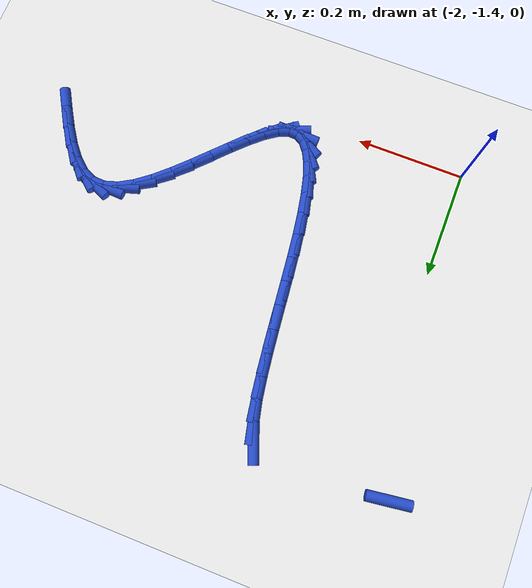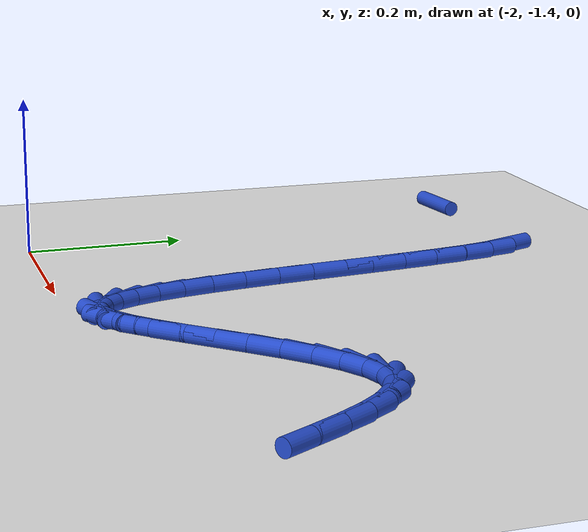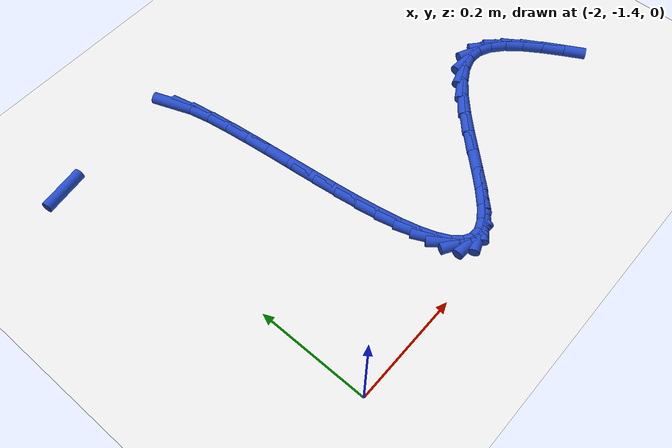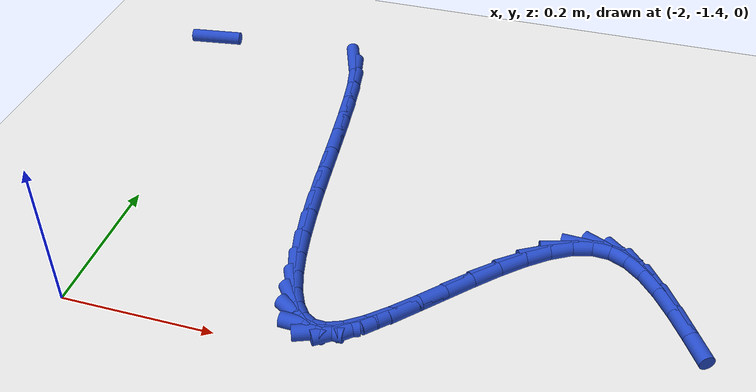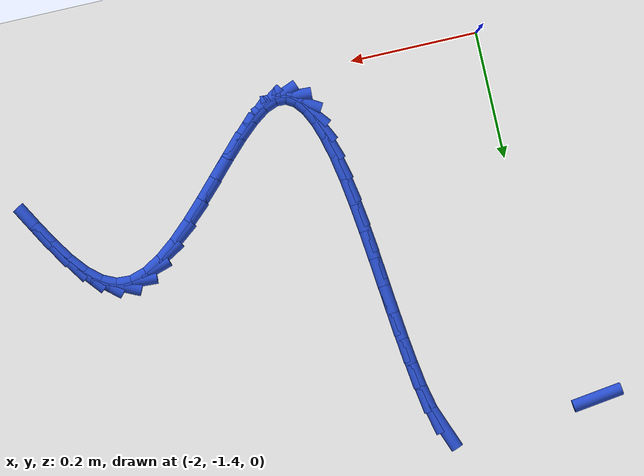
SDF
<sdf version="1.6">
 <world name="default">
  <model name="ground_plane">
   <static>1</static>
   <link name="link">
    <collision name="collision">
     <geometry><plane><normal>0 0 1</normal><size>100 100</size></plane></geometry>
     <surface><friction><ode><mu>100</mu><mu2>50</mu2></ode></friction></surface>
    </collision>
    <visual name="visual">
     <cast_shadows>0</cast_shadows>
     <geometry><plane><normal>0 0 1</normal><size>100 100</size></plane></geometry>
     <material>
      <script><uri>file://media/materials/scripts/gazebo.material</uri><name>Gazebo/WhiteGlow</name></script>
     </material>
    </visual>
   </link>
  </model>
  <model name="line">
   <link name="link_171">
    <pose>-2.0574273386530595 -0.8045697111637675 0.01 0 1.57 0.13420573447952366</pose>
    <collision name="collision">
     <geometry><cylinder><radius>0.01</radius><length>0.08</length></cylinder></geometry>
    </collision>
    <visual name="visual">
     <material>
      <script><name>Gazebo/Blue</name><uri>file://media/materials/scripts/gazebo.material</uri></script>
     </material>
     <geometry><cylinder><radius>0.01</radius><length>0.08</length></cylinder></geometry>
    </visual>
   </link>
   <link name="link_179">
    <pose>-1.8132017761412964 -0.8135681658975625 0.01 0 1.57 -1.205981990871385</pose>
    <collision name="collision">
     <geometry><cylinder><radius>0.01</radius><length>0.08</length></cylinder></geometry>
    </collision>
    <visual name="visual">
     <material>
      <script><name>Gazebo/Blue</name><uri>file://media/materials/scripts/gazebo.material</uri></script>
     </material>
     <geometry><cylinder><radius>0.01</radius><length>0.08</length></cylinder></geometry>
    </visual>
   </link>
   <link name="link_180">
    <pose>-1.8014931788398845 -0.8442262235104316 0.01 0 1.57 -1.3487975490068833</pose>
    <collision name="collision">
     <geometry><cylinder><radius>0.01</radius><length>0.08</length></cylinder></geometry>
    </collision>
    <visual name="visual">
     <material>
      <script><name>Gazebo/Blue</name><uri>file://media/materials/scripts/gazebo.material</uri></script>
     </material>
     <geometry><cylinder><radius>0.01</radius><length>0.08</length></cylinder></geometry>
    </visual>
   </link>
   <link name="link_181">
    <pose>-1.7932545634364587 -0.8807256413302305 0.01 0 1.57 -1.4158591493584807</pose>
    <collision name="collision">
     <geometry><cylinder><radius>0.01</radius><length>0.08</length></cylinder></geometry>
    </collision>
    <visual name="visual">
     <material>
      <script><name>Gazebo/Blue</name><uri>file://media/materials/scripts/gazebo.material</uri></script>
     </material>
     <geometry><cylinder><radius>0.01</radius><length>0.08</length></cylinder></geometry>
    </visual>
   </link>
   <link name="link_182">
    <pose>-1.7869482044718823 -0.9211021063606428 0.01 0 1.57 -1.4433334920001333</pose>
    <collision name="collision">
     <geometry><cylinder><radius>0.01</radius><length>0.08</length></cylinder></geometry>
    </collision>
    <visual name="visual">
     <material>
      <script><name>Gazebo/Blue</name><uri>file://media/materials/scripts/gazebo.material</uri></script>
     </material>
     <geometry><cylinder><radius>0.01</radius><length>0.08</length></cylinder></geometry>
    </visual>
   </link>
   <link name="link_183">
    <pose>-1.7814771741109001 -0.9637919568050595 0.01 0 1.57 -1.4590991842386198</pose>
    <collision name="collision">
     <geometry><cylinder><radius>0.01</radius><length>0.08</length></cylinder></geometry>
    </collision>
    <visual name="visual">
     <material>
      <script><name>Gazebo/Blue</name><uri>file://media/materials/scripts/gazebo.material</uri></script>
     </material>
     <geometry><cylinder><radius>0.01</radius><length>0.08</length></cylinder></geometry>
    </visual>
   </link>
   <link name="link_184">
    <pose>-1.776525228498479 -1.0079411126711226 0.01 0 1.57 -1.4670123826973323</pose>
    <collision name="collision">
     <geometry><cylinder><radius>0.01</radius><length>0.08</length></cylinder></geometry>
    </collision>
    <visual name="visual">
     <material>
      <script><name>Gazebo/Blue</name><uri>file://media/materials/scripts/gazebo.material</uri></script>
     </material>
     <geometry><cylinder><radius>0.01</radius><length>0.08</length></cylinder></geometry>
    </visual>
   </link>
   <link name="link_185">
    <pose>-1.771856120224629 -1.0527682045936237 0.01 0 1.57 -1.4678046930971198</pose>
    <collision name="collision">
     <geometry><cylinder><radius>0.01</radius><length>0.08</length></cylinder></geometry>
    </collision>
    <visual name="visual">
     <material>
      <script><name>Gazebo/Blue</name><uri>file://media/materials/scripts/gazebo.material</uri></script>
     </material>
     <geometry><cylinder><radius>0.01</radius><length>0.08</length></cylinder></geometry>
    </visual>
   </link>
   <link name="link_186">
    <pose>-1.7672336018793606 -1.0974918632073556 0.01 0 1.57 -1.4614644028445012</pose>
    <collision name="collision">
     <geometry><cylinder><radius>0.01</radius><length>0.08</length></cylinder></geometry>
    </collision>
    <visual name="visual">
     <material>
      <script><name>Gazebo/Blue</name><uri>file://media/materials/scripts/gazebo.material</uri></script>
     </material>
     <geometry><cylinder><radius>0.01</radius><length>0.08</length></cylinder></geometry>
    </visual>
   </link>
   <link name="link_187">
    <pose>-1.7624214260526838 -1.1413307191471087 0.01 0 1.57 -1.4472236521705786</pose>
    <collision name="collision">
     <geometry><cylinder><radius>0.01</radius><length>0.08</length></cylinder></geometry>
    </collision>
    <visual name="visual">
     <material>
      <script><name>Gazebo/Blue</name><uri>file://media/materials/scripts/gazebo.material</uri></script>
     </material>
     <geometry><cylinder><radius>0.01</radius><length>0.08</length></cylinder></geometry>
    </visual>
   </link>
   <link name="link_188">
    <pose>-1.757183345334609 -1.1835034030476763 0.01 0 1.57 -1.4233478482479953</pose>
    <collision name="collision">
     <geometry><cylinder><radius>0.01</radius><length>0.08</length></cylinder></geometry>
    </collision>
    <visual name="visual">
     <material>
      <script><name>Gazebo/Blue</name><uri>file://media/materials/scripts/gazebo.material</uri></script>
     </material>
     <geometry><cylinder><radius>0.01</radius><length>0.08</length></cylinder></geometry>
    </visual>
   </link>
   <link name="link_189">
    <pose>-1.7512831123151469 -1.223228545543849 0.01 0 1.57 -1.3866241658012075</pose>
    <collision name="collision">
     <geometry><cylinder><radius>0.01</radius><length>0.08</length></cylinder></geometry>
    </collision>
    <visual name="visual">
     <material>
      <script><name>Gazebo/Blue</name><uri>file://media/materials/scripts/gazebo.material</uri></script>
     </material>
     <geometry><cylinder><radius>0.01</radius><length>0.08</length></cylinder></geometry>
    </visual>
   </link>
   <link name="link_190">
    <pose>-1.7444844795843077 -1.2597247772704214 0.01 0 1.57 -1.3312777783412117</pose>
    <collision name="collision">
     <geometry><cylinder><radius>0.01</radius><length>0.08</length></cylinder></geometry>
    </collision>
    <visual name="visual">
     <material>
      <script><name>Gazebo/Blue</name><uri>file://media/materials/scripts/gazebo.material</uri></script>
     </material>
     <geometry><cylinder><radius>0.01</radius><length>0.08</length></cylinder></geometry>
    </visual>
   </link>
   <link name="link_191">
    <pose>-1.7365511997321013 -1.2922107288621814 0.01 0 1.57 -1.2466837467604406</pose>
    <collision name="collision">
     <geometry><cylinder><radius>0.01</radius><length>0.08</length></cylinder></geometry>
    </collision>
    <visual name="visual">
     <material>
      <script><name>Gazebo/Blue</name><uri>file://media/materials/scripts/gazebo.material</uri></script>
     </material>
     <geometry><cylinder><radius>0.01</radius><length>0.08</length></cylinder></geometry>
    </visual>
   </link>
   <link name="link_192">
    <pose>-1.7272470253485377 -1.3199050309539226 0.01 0 1.57 -1.1125635252894555</pose>
    <collision name="collision">
     <geometry><cylinder><radius>0.01</radius><length>0.08</length></cylinder></geometry>
    </collision>
    <visual name="visual">
     <material>
      <script><name>Gazebo/Blue</name><uri>file://media/materials/scripts/gazebo.material</uri></script>
     </material>
     <geometry><cylinder><radius>0.01</radius><length>0.08</length></cylinder></geometry>
    </visual>
   </link>
   <link name="link_193">
    <pose>-1.7163357090236282 -1.3420263141804374 0.01 0 1.57 -0.8906189308600857</pose>
    <collision name="collision">
     <geometry><cylinder><radius>0.01</radius><length>0.08</length></cylinder></geometry>
    </collision>
    <visual name="visual">
     <material>
      <script><name>Gazebo/Blue</name><uri>file://media/materials/scripts/gazebo.material</uri></script>
     </material>
     <geometry><cylinder><radius>0.01</radius><length>0.08</length></cylinder></geometry>
    </visual>
   </link>
   <link name="link_194">
    <pose>-1.7035810033473824 -1.3577932091765172 0.01 0 1.57 -0.5269556795341095</pose>
    <collision name="collision">
     <geometry><cylinder><radius>0.01</radius><length>0.08</length></cylinder></geometry>
    </collision>
    <visual name="visual">
     <material>
      <script><name>Gazebo/Blue</name><uri>file://media/materials/scripts/gazebo.material</uri></script>
     </material>
     <geometry><cylinder><radius>0.01</radius><length>0.08</length></cylinder></geometry>
    </visual>
   </link>
   <link name="link_195">
    <pose>-1.6887466609098105 -1.3664243465769539 0.01 0 1.57 -0.041608682907525625</pose>
    <collision name="collision">
     <geometry><cylinder><radius>0.01</radius><length>0.08</length></cylinder></geometry>
    </collision>
    <visual name="visual">
     <material>
      <script><name>Gazebo/Blue</name><uri>file://media/materials/scripts/gazebo.material</uri></script>
     </material>
     <geometry><cylinder><radius>0.01</radius><length>0.08</length></cylinder></geometry>
    </visual>
   </link>
   <link name="link_196">
    <pose>-1.6715964343009233 -1.3671383570165396 0.01 0 1.57 0.37808266567794785</pose>
    <collision name="collision">
     <geometry><cylinder><radius>0.01</radius><length>0.08</length></cylinder></geometry>
    </collision>
    <visual name="visual">
     <material>
      <script><name>Gazebo/Blue</name><uri>file://media/materials/scripts/gazebo.material</uri></script>
     </material>
     <geometry><cylinder><radius>0.01</radius><length>0.08</length></cylinder></geometry>
    </visual>
   </link>
   <link name="link_197">
    <pose>-1.6519384301354325 -1.3593303705104052 0.01 0 1.57 0.6117918866914449</pose>
    <collision name="collision">
     <geometry><cylinder><radius>0.01</radius><length>0.08</length></cylinder></geometry>
    </collision>
    <visual name="visual">
     <material>
      <script><name>Gazebo/Blue</name><uri>file://media/materials/scripts/gazebo.material</uri></script>
     </material>
     <geometry><cylinder><radius>0.01</radius><length>0.08</length></cylinder></geometry>
    </visual>
   </link>
   <link name="link_198">
    <pose>-1.6299617933126547 -1.3439117948313346 0.01 0 1.57 0.7287469941273539</pose>
    <collision name="collision">
     <geometry><cylinder><radius>0.01</radius><length>0.08</length></cylinder></geometry>
    </collision>
    <visual name="visual">
     <material>
      <script><name>Gazebo/Blue</name><uri>file://media/materials/scripts/gazebo.material</uri></script>
     </material>
     <geometry><cylinder><radius>0.01</radius><length>0.08</length></cylinder></geometry>
    </visual>
   </link>
   <link name="link_199">
    <pose>-1.6060497610001814 -1.322566395284708 0.01 0 1.57 0.7877426053004535</pose>
    <collision name="collision">
     <geometry><cylinder><radius>0.01</radius><length>0.08</length></cylinder></geometry>
    </collision>
    <visual name="visual">
     <material>
      <script><name>Gazebo/Blue</name><uri>file://media/materials/scripts/gazebo.material</uri></script>
     </material>
     <geometry><cylinder><radius>0.01</radius><length>0.08</length></cylinder></geometry>
    </visual>
   </link>
   <link name="link_200">
    <pose>-1.5805871127555822 -1.296984074857361 0.01 0 1.57 0.812800239523442</pose>
    <collision name="collision">
     <geometry><cylinder><radius>0.01</radius><length>0.08</length></cylinder></geometry>
    </collision>
    <visual name="visual">
     <material>
      <script><name>Gazebo/Blue</name><uri>file://media/materials/scripts/gazebo.material</uri></script>
     </material>
     <geometry><cylinder><radius>0.01</radius><length>0.08</length></cylinder></geometry>
    </visual>
   </link>
   <link name="link_201">
    <pose>-1.553958628136424 -1.2688547365361285 0.01 0 1.57 0.8133522943526649</pose>
    <collision name="collision">
     <geometry><cylinder><radius>0.01</radius><length>0.08</length></cylinder></geometry>
    </collision>
    <visual name="visual">
     <material>
      <script><name>Gazebo/Blue</name><uri>file://media/materials/scripts/gazebo.material</uri></script>
     </material>
     <geometry><cylinder><radius>0.01</radius><length>0.08</length></cylinder></geometry>
    </visual>
   </link>
   <link name="link_202">
    <pose>-1.5265490867002753 -1.2398682833078467 0.01 0 1.57 0.7916141244637183</pose>
    <collision name="collision">
     <geometry><cylinder><radius>0.01</radius><length>0.08</length></cylinder></geometry>
    </collision>
    <visual name="visual">
     <material>
      <script><name>Gazebo/Blue</name><uri>file://media/materials/scripts/gazebo.material</uri></script>
     </material>
     <geometry><cylinder><radius>0.01</radius><length>0.08</length></cylinder></geometry>
    </visual>
   </link>
   <link name="link_203">
    <pose>-1.4987432680047044 -1.2117146181593506 0.01 0 1.57 0.744515207846923</pose>
    <collision name="collision">
     <geometry><cylinder><radius>0.01</radius><length>0.08</length></cylinder></geometry>
    </collision>
    <visual name="visual">
     <material>
      <script><name>Gazebo/Blue</name><uri>file://media/materials/scripts/gazebo.material</uri></script>
     </material>
     <geometry><cylinder><radius>0.01</radius><length>0.08</length></cylinder></geometry>
    </visual>
   </link>
   <link name="link_204">
    <pose>-1.4709259516072792 -1.1860836440774758 0.01 0 1.57 0.6626988416129906</pose>
    <collision name="collision">
     <geometry><cylinder><radius>0.01</radius><length>0.08</length></cylinder></geometry>
    </collision>
    <visual name="visual">
     <material>
      <script><name>Gazebo/Blue</name><uri>file://media/materials/scripts/gazebo.material</uri></script>
     </material>
     <geometry><cylinder><radius>0.01</radius><length>0.08</length></cylinder></geometry>
    </visual>
   </link>
   <link name="link_205">
    <pose>-1.4434819170655677 -1.1646652640490576 0.01 0 1.57 0.5266491813021411</pose>
    <collision name="collision">
     <geometry><cylinder><radius>0.01</radius><length>0.08</length></cylinder></geometry>
    </collision>
    <visual name="visual">
     <material>
      <script><name>Gazebo/Blue</name><uri>file://media/materials/scripts/gazebo.material</uri></script>
     </material>
     <geometry><cylinder><radius>0.01</radius><length>0.08</length></cylinder></geometry>
    </visual>
   </link>
   <link name="link_206">
    <pose>-1.416795943937139 -1.1491493810609315 0.01 0 1.57 0.3007882450234251</pose>
    <collision name="collision">
     <geometry><cylinder><radius>0.01</radius><length>0.08</length></cylinder></geometry>
    </collision>
    <visual name="visual">
     <material>
      <script><name>Gazebo/Blue</name><uri>file://media/materials/scripts/gazebo.material</uri></script>
     </material>
     <geometry><cylinder><radius>0.01</radius><length>0.08</length></cylinder></geometry>
    </visual>
   </link>
   <link name="link_207">
    <pose>-1.3912528117795595 -1.141225898099933 0.01 0 1.57 -0.05329480063994282</pose>
    <collision name="collision">
     <geometry><cylinder><radius>0.01</radius><length>0.08</length></cylinder></geometry>
    </collision>
    <visual name="visual">
     <material>
      <script><name>Gazebo/Blue</name><uri>file://media/materials/scripts/gazebo.material</uri></script>
     </material>
     <geometry><cylinder><radius>0.01</radius><length>0.08</length></cylinder></geometry>
    </visual>
   </link>
   <link name="link_208">
    <pose>-1.367220442731767 -1.1425079124308626 0.01 0 1.57 -0.43745999695485577</pose>
    <collision name="collision">
     <geometry><cylinder><radius>0.01</radius><length>0.08</length></cylinder></geometry>
    </collision>
    <visual name="visual">
     <material>
      <script><name>Gazebo/Blue</name><uri>file://media/materials/scripts/gazebo.material</uri></script>
     </material>
     <geometry><cylinder><radius>0.01</radius><length>0.08</length></cylinder></geometry>
    </visual>
   </link>
   <link name="link_209">
    <pose>-1.3447204635526082 -1.153030731308804 0.01 0 1.57 -0.7109888321285145</pose>
    <collision name="collision">
     <geometry><cylinder><radius>0.01</radius><length>0.08</length></cylinder></geometry>
    </collision>
    <visual name="visual">
     <material>
      <script><name>Gazebo/Blue</name><uri>file://media/materials/scripts/gazebo.material</uri></script>
     </material>
     <geometry><cylinder><radius>0.01</radius><length>0.08</length></cylinder></geometry>
    </visual>
   </link>
   <link name="link_210">
    <pose>-1.3234497666663112 -1.1713501083521858 0.01 0 1.57 -0.8797875341202724</pose>
    <collision name="collision">
     <geometry><cylinder><radius>0.01</radius><length>0.08</length></cylinder></geometry>
    </collision>
    <visual name="visual">
     <material>
      <script><name>Gazebo/Blue</name><uri>file://media/materials/scripts/gazebo.material</uri></script>
     </material>
     <geometry><cylinder><radius>0.01</radius><length>0.08</length></cylinder></geometry>
    </visual>
   </link>
   <link name="link_211">
    <pose>-1.303092704874657 -1.1959646641878923 0.01 0 1.57 -0.9791887632016816</pose>
    <collision name="collision">
     <geometry><cylinder><radius>0.01</radius><length>0.08</length></cylinder></geometry>
    </collision>
    <visual name="visual">
     <material>
      <script><name>Gazebo/Blue</name><uri>file://media/materials/scripts/gazebo.material</uri></script>
     </material>
     <geometry><cylinder><radius>0.01</radius><length>0.08</length></cylinder></geometry>
    </visual>
   </link>
   <link name="link_212">
    <pose>-1.2833336309794263 -1.2253730194428059 0.01 0 1.57 -1.033614983632294</pose>
    <collision name="collision">
     <geometry><cylinder><radius>0.01</radius><length>0.08</length></cylinder></geometry>
    </collision>
    <visual name="visual">
     <material>
      <script><name>Gazebo/Blue</name><uri>file://media/materials/scripts/gazebo.material</uri></script>
     </material>
     <geometry><cylinder><radius>0.01</radius><length>0.08</length></cylinder></geometry>
    </visual>
   </link>
   <link name="link_213">
    <pose>-1.263856897782401 -1.2580737947438116 0.01 0 1.57 -1.0560228323092589</pose>
    <collision name="collision">
     <geometry><cylinder><radius>0.01</radius><length>0.08</length></cylinder></geometry>
    </collision>
    <visual name="visual">
     <material>
      <script><name>Gazebo/Blue</name><uri>file://media/materials/scripts/gazebo.material</uri></script>
     </material>
     <geometry><cylinder><radius>0.01</radius><length>0.08</length></cylinder></geometry>
    </visual>
   </link>
  </model>
 </world>
</sdf>
